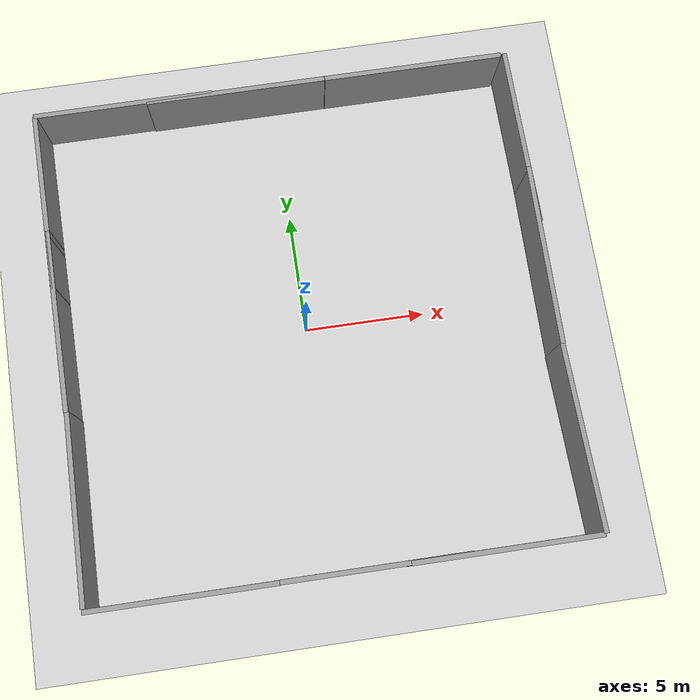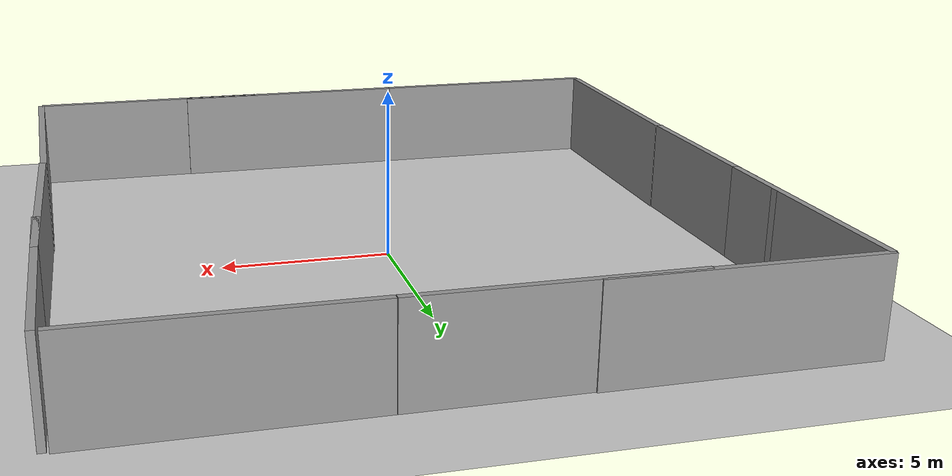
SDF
<sdf version="1.4">
 <world name="default">
  <light name="sun" type="directional">
   <pose>0 0 10 0 -0 0</pose>
   <diffuse>0.8 0.8 0.8 1</diffuse>
   <specular>0.2 0.2 0.2 1</specular>
   <attenuation>
    <range>1000</range>
    <constant>0.9</constant>
    <linear>0.01</linear>
    <quadratic>0.001</quadratic>
   </attenuation>
   <direction>-0.5 0.1 -0.9</direction>
  </light>
  <model name="ground_plane">
   <static>1</static>
   <link name="link">
    <collision name="collision">
     <geometry><plane><normal>0 0 1</normal><size>100 100</size></plane></geometry>
     <surface><friction><ode><mu>100</mu><mu2>50</mu2></ode></friction></surface>
    </collision>
    <visual name="visual">
     <cast_shadows>0</cast_shadows>
     <geometry><plane><normal>0 0 1</normal><size>100 100</size></plane></geometry>
     <material>
      <script><uri>file://media/materials/scripts/gazebo.material</uri><name>Gazebo/Grey</name></script>
     </material>
    </visual>
    <velocity_decay><linear>0</linear><angular>0</angular></velocity_decay>
   </link>
  </model>
  <physics type="ode">
   <max_step_size>0.001</max_step_size>
   <real_time_factor>1</real_time_factor>
   <real_time_update_rate>1000</real_time_update_rate>
   <gravity>0 0 -9.8</gravity>
  </physics>
  <scene><ambient>0.4 0.4 0.4 1</ambient><background>0.7 0.7 0.7 1</background><shadows>1</shadows></scene>
  <model name="grey_wall">
   <static>1</static>
   <link name="link">
    <pose>0 0 1.4 0 -0 0</pose>
    <collision name="collision"><geometry><box><size>7.5 0.2 2.8</size></box></geometry></collision>
    <visual name="visual">
     <cast_shadows>0</cast_shadows>
     <geometry><box><size>7.5 0.2 2.8</size></box></geometry>
     <material>
      <script>
       <uri>model://grey_wall/materials/scripts</uri>
       <uri>model://grey_wall/materials/textures</uri>
       <name>vrc/grey_wall</name>
      </script>
     </material>
    </visual>
    <velocity_decay><linear>0</linear><angular>0</angular></velocity_decay>
   </link>
   <pose>-6.22167 -10.1146 0 0 -0 0</pose>
  </model>
  <model name="grey_wall_0">
   <static>1</static>
   <link name="link">
    <pose>0 0 1.4 0 -0 0</pose>
    <collision name="collision"><geometry><box><size>7.5 0.2 2.8</size></box></geometry></collision>
    <visual name="visual">
     <cast_shadows>0</cast_shadows>
     <geometry><box><size>7.5 0.2 2.8</size></box></geometry>
     <material>
      <script>
       <uri>model://grey_wall/materials/scripts</uri>
       <uri>model://grey_wall/materials/textures</uri>
       <name>vrc/grey_wall</name>
      </script>
     </material>
    </visual>
    <velocity_decay><linear>0</linear><angular>0</angular></velocity_decay>
   </link>
   <pose>1.27181 -10.1023 0 0 -0 0</pose>
  </model>
  <model name="grey_wall_1">
   <static>1</static>
   <link name="link">
    <pose>0 0 1.4 0 -0 0</pose>
    <collision name="collision"><geometry><box><size>7.5 0.2 2.8</size></box></geometry></collision>
    <visual name="visual">
     <cast_shadows>0</cast_shadows>
     <geometry><box><size>7.5 0.2 2.8</size></box></geometry>
     <material>
      <script>
       <uri>model://grey_wall/materials/scripts</uri>
       <uri>model://grey_wall/materials/textures</uri>
       <name>vrc/grey_wall</name>
      </script>
     </material>
    </visual>
    <velocity_decay><linear>0</linear><angular>0</angular></velocity_decay>
   </link>
   <pose>-9.86572 -6.24465 0 0 -0 1.55682</pose>
  </model>
  <model name="grey_wall_2">
   <static>1</static>
   <link name="link">
    <pose>0 0 1.4 0 -0 0</pose>
    <collision name="collision"><geometry><box><size>7.5 0.2 2.8</size></box></geometry></collision>
    <visual name="visual">
     <cast_shadows>0</cast_shadows>
     <geometry><box><size>7.5 0.2 2.8</size></box></geometry>
     <material>
      <script>
       <uri>model://grey_wall/materials/scripts</uri>
       <uri>model://grey_wall/materials/textures</uri>
       <name>vrc/grey_wall</name>
      </script>
     </material>
    </visual>
    <velocity_decay><linear>0</linear><angular>0</angular></velocity_decay>
   </link>
   <pose>-9.86691 1.2492 0 0 0 -1.56319</pose>
  </model>
  <model name="grey_wall_3">
   <static>1</static>
   <link name="link">
    <pose>0 0 1.4 0 -0 0</pose>
    <collision name="collision"><geometry><box><size>7.5 0.2 2.8</size></box></geometry></collision>
    <visual name="visual">
     <cast_shadows>0</cast_shadows>
     <geometry><box><size>7.5 0.2 2.8</size></box></geometry>
     <material>
      <script>
       <uri>model://grey_wall/materials/scripts</uri>
       <uri>model://grey_wall/materials/textures</uri>
       <name>vrc/grey_wall</name>
      </script>
     </material>
    </visual>
    <velocity_decay><linear>0</linear><angular>0</angular></velocity_decay>
   </link>
   <pose>6.31872 -10.1239 0 0 -0 0</pose>
  </model>
  <model name="grey_wall_4">
   <static>1</static>
   <link name="link">
    <pose>0 0 1.4 0 -0 0</pose>
    <collision name="collision"><geometry><box><size>7.5 0.2 2.8</size></box></geometry></collision>
    <visual name="visual">
     <cast_shadows>0</cast_shadows>
     <geometry><box><size>7.5 0.2 2.8</size></box></geometry>
     <material>
      <script>
       <uri>model://grey_wall/materials/scripts</uri>
       <uri>model://grey_wall/materials/textures</uri>
       <name>vrc/grey_wall</name>
      </script>
     </material>
    </visual>
    <velocity_decay><linear>0</linear><angular>0</angular></velocity_decay>
   </link>
   <pose>9.99566 -6.34216 0 0 -0 1.6</pose>
  </model>
  <model name="grey_wall_5">
   <static>1</static>
   <link name="link">
    <pose>0 0 1.4 0 -0 0</pose>
    <collision name="collision"><geometry><box><size>7.5 0.2 2.8</size></box></geometry></collision>
    <visual name="visual">
     <cast_shadows>0</cast_shadows>
     <geometry><box><size>7.5 0.2 2.8</size></box></geometry>
     <material>
      <script>
       <uri>model://grey_wall/materials/scripts</uri>
       <uri>model://grey_wall/materials/textures</uri>
       <name>vrc/grey_wall</name>
      </script>
     </material>
    </visual>
    <velocity_decay><linear>0</linear><angular>0</angular></velocity_decay>
   </link>
   <pose>9.93966 1.1528 0 0 -0 1.56319</pose>
  </model>
  <model name="grey_wall_6">
   <static>1</static>
   <link name="link">
    <pose>0 0 1.4 0 -0 0</pose>
    <collision name="collision"><geometry><box><size>7.5 0.2 2.8</size></box></geometry></collision>
    <visual name="visual">
     <cast_shadows>0</cast_shadows>
     <geometry><box><size>7.5 0.2 2.8</size></box></geometry>
     <material>
      <script>
       <uri>model://grey_wall/materials/scripts</uri>
       <uri>model://grey_wall/materials/textures</uri>
       <name>vrc/grey_wall</name>
      </script>
     </material>
    </visual>
    <velocity_decay><linear>0</linear><angular>0</angular></velocity_decay>
   </link>
   <pose>9.94999 6.28683 0 0 0 -1.56</pose>
  </model>
  <model name="grey_wall_7">
   <static>1</static>
   <link name="link">
    <pose>0 0 1.4 0 -0 0</pose>
    <collision name="collision"><geometry><box><size>7.5 0.2 2.8</size></box></geometry></collision>
    <visual name="visual">
     <cast_shadows>0</cast_shadows>
     <geometry><box><size>7.5 0.2 2.8</size></box></geometry>
     <material>
      <script>
       <uri>model://grey_wall/materials/scripts</uri>
       <uri>model://grey_wall/materials/textures</uri>
       <name>vrc/grey_wall</name>
      </script>
     </material>
    </visual>
    <velocity_decay><linear>0</linear><angular>0</angular></velocity_decay>
   </link>
   <pose>6 10 0 0 -0 0</pose>
  </model>
  <model name="grey_wall_8">
   <static>1</static>
   <link name="link">
    <pose>0 0 1.4 0 -0 0</pose>
    <collision name="collision"><geometry><box><size>7.5 0.2 2.8</size></box></geometry></collision>
    <visual name="visual">
     <cast_shadows>0</cast_shadows>
     <geometry><box><size>7.5 0.2 2.8</size></box></geometry>
     <material>
      <script>
       <uri>model://grey_wall/materials/scripts</uri>
       <uri>model://grey_wall/materials/textures</uri>
       <name>vrc/grey_wall</name>
      </script>
     </material>
    </visual>
    <velocity_decay><linear>0</linear><angular>0</angular></velocity_decay>
   </link>
   <pose>-1.51602 10.0047 0 0 -0 0</pose>
  </model>
  <model name="grey_wall_9">
   <static>1</static>
   <link name="link">
    <pose>0 0 1.4 0 -0 0</pose>
    <collision name="collision"><geometry><box><size>7.5 0.2 2.8</size></box></geometry></collision>
    <visual name="visual">
     <cast_shadows>0</cast_shadows>
     <geometry><box><size>7.5 0.2 2.8</size></box></geometry>
     <material>
      <script>
       <uri>model://grey_wall/materials/scripts</uri>
       <uri>model://grey_wall/materials/textures</uri>
       <name>vrc/grey_wall</name>
      </script>
     </material>
    </visual>
    <velocity_decay><linear>0</linear><angular>0</angular></velocity_decay>
   </link>
   <pose>-6.24949 10.0477 0 0 -0 0</pose>
  </model>
  <model name="grey_wall_10">
   <static>1</static>
   <link name="link">
    <pose>0 0 1.4 0 -0 0</pose>
    <collision name="collision"><geometry><box><size>7.5 0.2 2.8</size></box></geometry></collision>
    <visual name="visual">
     <cast_shadows>0</cast_shadows>
     <geometry><box><size>7.5 0.2 2.8</size></box></geometry>
     <material>
      <script>
       <uri>model://grey_wall/materials/scripts</uri>
       <uri>model://grey_wall/materials/textures</uri>
       <name>vrc/grey_wall</name>
      </script>
     </material>
    </visual>
    <velocity_decay><linear>0</linear><angular>0</angular></velocity_decay>
   </link>
   <pose>-9.91028 6.2889 0 0 0 -1.56</pose>
  </model>
 </world>
</sdf>
